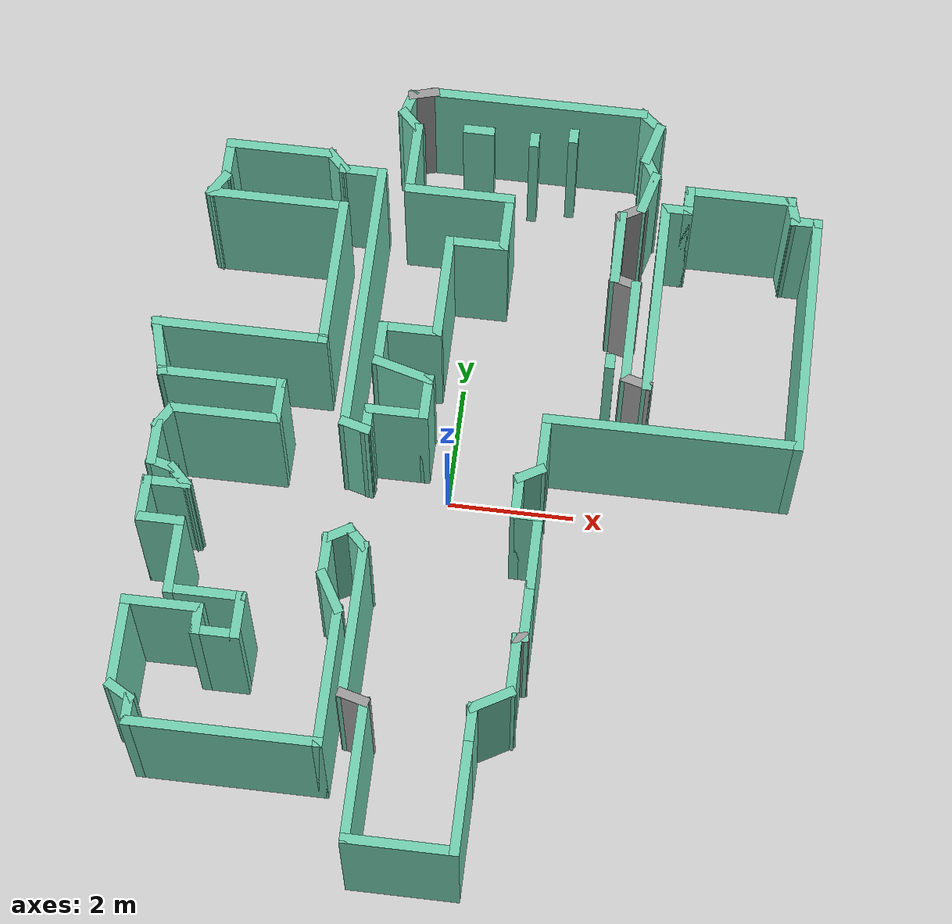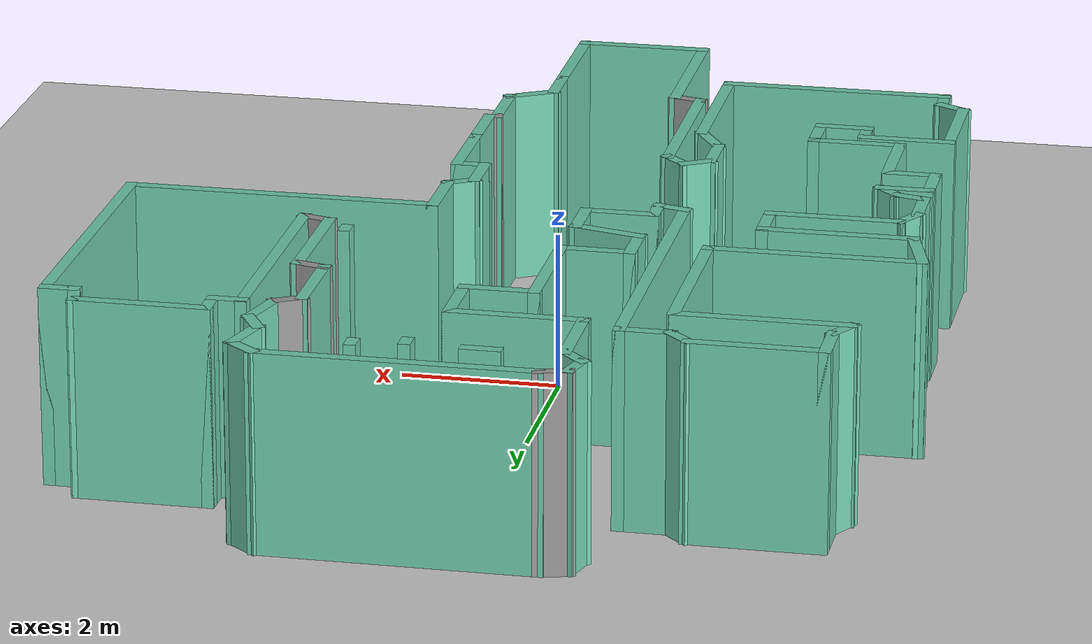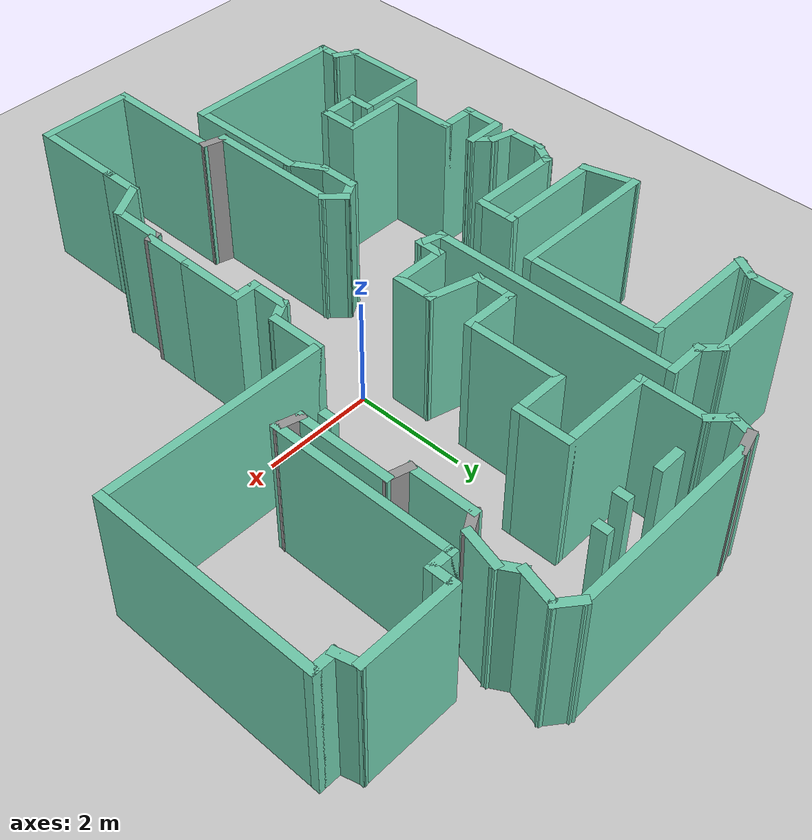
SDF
<sdf version="1.6">
 <world name="default">
  <model name="ground_plane">
   <static>1</static>
   <link name="link">
    <collision name="collision">
     <geometry><plane><normal>0 0 1</normal><size>100 100</size></plane></geometry>
     <surface>
      <contact><collide_bitmask>65535</collide_bitmask></contact>
      <friction><ode><mu>100</mu><mu2>50</mu2></ode></friction>
     </surface>
    </collision>
    <visual name="visual">
     <cast_shadows>0</cast_shadows>
     <geometry><plane><normal>0 0 1</normal><size>100 100</size></plane></geometry>
     <material>
      <script><uri>file://media/materials/scripts/gazebo.material</uri><name>Gazebo/Grey</name></script>
     </material>
    </visual>
   </link>
  </model>
  <model name="map_1">
   <pose>0.285268 -0.15484 0 0 -0 0</pose>
   <link name="Wall_1">
    <collision name="Wall_1_Collision">
     <geometry><box><size>3.5 0.15 2.5</size></box></geometry>
     <pose>0 0 1.25 0 -0 0</pose>
    </collision>
    <visual name="Wall_1_Visual">
     <pose>0 0 1.25 0 -0 0</pose>
     <geometry><box><size>3.5 0.15 2.5</size></box></geometry>
     <material>
      <script><uri>file://media/materials/scripts/gazebo.material</uri><name>Gazebo/Grey</name></script>
      <ambient>0.435294 0.796078 0.67451 1</ambient>
     </material>
     <meta><layer>0</layer></meta>
    </visual>
    <pose>0.433298 6.20572 0 0 -0 3.14159</pose>
   </link>
   <link name="Wall_10">
    <collision name="Wall_10_Collision">
     <geometry><box><size>1 0.15 2.5</size></box></geometry>
     <pose>0 0 1.25 0 -0 0</pose>
    </collision>
    <visual name="Wall_10_Visual">
     <pose>0 0 1.25 0 -0 0</pose>
     <geometry><box><size>1 0.15 2.5</size></box></geometry>
     <material>
      <script><uri>file://media/materials/scripts/gazebo.material</uri><name>Gazebo/Grey</name></script>
      <ambient>0.435294 0.796078 0.67451 1</ambient>
     </material>
     <meta><layer>0</layer></meta>
    </visual>
    <pose>-0.247875 3.57957 0 0 -0 3.14159</pose>
   </link>
   <link name="Wall_100">
    <collision name="Wall_100_Collision">
     <geometry><box><size>3.25 0.15 2.5</size></box></geometry>
     <pose>0 0 1.25 0 -0 0</pose>
    </collision>
    <visual name="Wall_100_Visual">
     <pose>0 0 1.25 0 -0 0</pose>
     <geometry><box><size>3.25 0.15 2.5</size></box></geometry>
     <material>
      <script><uri>file://media/materials/scripts/gazebo.material</uri><name>Gazebo/Grey</name></script>
      <ambient>0.435294 0.796078 0.67451 1</ambient>
     </material>
     <meta><layer>0</layer></meta>
    </visual>
    <pose>2.63867 3.00282 0 0 -0 -1.5708</pose>
   </link>
   <link name="Wall_101">
    <collision name="Wall_101_Collision">
     <geometry><box><size>0.5 0.15 2.5</size></box></geometry>
     <pose>0 0 1.25 0 -0 0</pose>
    </collision>
    <visual name="Wall_101_Visual">
     <pose>0 0 1.25 0 -0 0</pose>
     <geometry><box><size>0.5 0.15 2.5</size></box></geometry>
     <material>
      <script><uri>file://media/materials/scripts/gazebo.material</uri><name>Gazebo/Grey</name></script>
      <ambient>1 1 1 1</ambient>
     </material>
     <meta><layer>0</layer></meta>
    </visual>
    <pose>2.46963 1.49811 0 0 -0 2.87979</pose>
   </link>
   <link name="Wall_102">
    <collision name="Wall_102_Collision">
     <geometry><box><size>1.75 0.15 2.5</size></box></geometry>
     <pose>0 0 1.25 0 -0 0</pose>
    </collision>
    <visual name="Wall_102_Visual">
     <pose>0 0 1.25 0 -0 0</pose>
     <geometry><box><size>1.75 0.15 2.5</size></box></geometry>
     <material>
      <script><uri>file://media/materials/scripts/gazebo.material</uri><name>Gazebo/Grey</name></script>
      <ambient>0.435294 0.796078 0.67451 1</ambient>
     </material>
     <meta><layer>0</layer></meta>
    </visual>
    <pose>2.30059 2.3434 0 0 -0 1.5708</pose>
   </link>
   <link name="Wall_103">
    <collision name="Wall_103_Collision">
     <geometry><box><size>0.5 0.15 2.5</size></box></geometry>
     <pose>0 0 1.25 0 -0 0</pose>
    </collision>
    <visual name="Wall_103_Visual">
     <pose>0 0 1.25 0 -0 0</pose>
     <geometry><box><size>0.5 0.15 2.5</size></box></geometry>
     <material>
      <script><uri>file://media/materials/scripts/gazebo.material</uri><name>Gazebo/Grey</name></script>
      <ambient>1 1 1 1</ambient>
     </material>
     <meta><layer>0</layer></meta>
    </visual>
    <pose>2.13156 3.1887 0 0 -0 2.87979</pose>
   </link>
   <link name="Wall_104">
    <collision name="Wall_104_Collision">
     <geometry><box><size>1.25 0.15 2.5</size></box></geometry>
     <pose>0 0 1.25 0 -0 0</pose>
    </collision>
    <visual name="Wall_104_Visual">
     <pose>0 0 1.25 0 -0 0</pose>
     <geometry><box><size>1.25 0.15 2.5</size></box></geometry>
     <material>
      <script><uri>file://media/materials/scripts/gazebo.material</uri><name>Gazebo/Grey</name></script>
      <ambient>0.435294 0.796078 0.67451 1</ambient>
     </material>
     <meta><layer>0</layer></meta>
    </visual>
    <pose>1.96252 3.78399 0 0 -0 1.5708</pose>
   </link>
   <link name="Wall_105">
    <collision name="Wall_105_Collision">
     <geometry><box><size>0.5 0.15 2.5</size></box></geometry>
     <pose>0 0 1.25 0 -0 0</pose>
    </collision>
    <visual name="Wall_105_Visual">
     <pose>0 0 1.25 0 -0 0</pose>
     <geometry><box><size>0.5 0.15 2.5</size></box></geometry>
     <material>
      <script><uri>file://media/materials/scripts/gazebo.material</uri><name>Gazebo/Grey</name></script>
      <ambient>1 1 1 1</ambient>
     </material>
     <meta><layer>0</layer></meta>
    </visual>
    <pose>2.11407 4.42149 0 0 -0 0.523599</pose>
   </link>
   <link name="Wall_106">
    <collision name="Wall_106_Collision">
     <geometry><box><size>0.75 0.15 2.5</size></box></geometry>
     <pose>0 0 1.25 0 -0 0</pose>
    </collision>
    <visual name="Wall_106_Visual">
     <pose>0 0 1.25 0 -0 0</pose>
     <geometry><box><size>0.75 0.15 2.5</size></box></geometry>
     <material>
      <script><uri>file://media/materials/scripts/gazebo.material</uri><name>Gazebo/Grey</name></script>
      <ambient>0.435294 0.796078 0.67451 1</ambient>
     </material>
     <meta><layer>0</layer></meta>
    </visual>
    <pose>2.34327 4.79877 0 0 -0 1.309</pose>
   </link>
   <link name="Wall_107">
    <collision name="Wall_107_Collision">
     <geometry><box><size>0.5 0.15 2.5</size></box></geometry>
     <pose>0 0 1.25 0 -0 0</pose>
    </collision>
    <visual name="Wall_107_Visual">
     <pose>0 0 1.25 0 -0 0</pose>
     <geometry><box><size>0.5 0.15 2.5</size></box></geometry>
     <material>
      <script><uri>file://media/materials/scripts/gazebo.material</uri><name>Gazebo/Grey</name></script>
      <ambient>0.435294 0.796078 0.67451 1</ambient>
     </material>
     <meta><layer>0</layer></meta>
    </visual>
    <pose>2.33342 5.2401 0 0 -0 2.0944</pose>
   </link>
   <link name="Wall_108">
    <collision name="Wall_108_Collision">
     <geometry><box><size>0.75 0.15 2.5</size></box></geometry>
     <pose>0 0 1.25 0 -0 0</pose>
    </collision>
    <visual name="Wall_108_Visual">
     <pose>0 0 1.25 0 -0 0</pose>
     <geometry><box><size>0.75 0.15 2.5</size></box></geometry>
     <material>
      <script><uri>file://media/materials/scripts/gazebo.material</uri><name>Gazebo/Grey</name></script>
      <ambient>0.435294 0.796078 0.67451 1</ambient>
     </material>
     <meta><layer>0</layer></meta>
    </visual>
    <pose>2.32356 5.68143 0 0 -0 1.309</pose>
   </link>
   <link name="Wall_109">
    <collision name="Wall_109_Collision">
     <geometry><box><size>0.525223 0.15 2.5</size></box></geometry>
     <pose>0 0 1.25 0 -0 0</pose>
    </collision>
    <visual name="Wall_109_Visual">
     <pose>0 0 1.25 0 -0 0</pose>
     <geometry><box><size>0.525223 0.15 2.5</size></box></geometry>
     <material>
      <script><uri>file://media/materials/scripts/gazebo.material</uri><name>Gazebo/Grey</name></script>
      <ambient>0.435294 0.796078 0.67451 1</ambient>
     </material>
     <meta><layer>0</layer></meta>
    </visual>
    <pose>2.25475 6.08846 0 0 -0 2.46648</pose>
   </link>
   <link name="Wall_11">
    <collision name="Wall_11_Collision">
     <geometry><box><size>1.75 0.15 2.5</size></box></geometry>
     <pose>0 0 1.25 0 -0 0</pose>
    </collision>
    <visual name="Wall_11_Visual">
     <pose>0 0 1.25 0 -0 0</pose>
     <geometry><box><size>1.75 0.15 2.5</size></box></geometry>
     <material>
      <script><uri>file://media/materials/scripts/gazebo.material</uri><name>Gazebo/Grey</name></script>
      <ambient>0.435294 0.796078 0.67451 1</ambient>
     </material>
     <meta><layer>0</layer></meta>
    </visual>
    <pose>-0.672875 2.77957 0 0 -0 -1.5708</pose>
   </link>
   <link name="Wall_111">
    <collision name="Wall_111_Collision">
     <geometry><box><size>0.5 0.15 2.5</size></box></geometry>
     <pose>0 0 1.25 0 -0 0</pose>
    </collision>
    <visual name="Wall_111_Visual">
     <pose>0 0 1.25 0 -0 0</pose>
     <geometry><box><size>0.5 0.15 2.5</size></box></geometry>
     <material>
      <script><uri>file://media/materials/scripts/gazebo.material</uri><name>Gazebo/Grey</name></script>
      <ambient>0.435294 0.796078 0.67451 1</ambient>
     </material>
     <meta><layer>0</layer></meta>
    </visual>
    <pose>-0.451736 5.60255 0 0 -0 0</pose>
   </link>
   <link name="Wall_113">
    <collision name="Wall_113_Collision">
     <geometry><box><size>0.25 0.15 2.5</size></box></geometry>
     <pose>0 0 1.25 0 -0 0</pose>
    </collision>
    <visual name="Wall_113_Visual">
     <pose>0 0 1.25 0 -0 0</pose>
     <geometry><box><size>0.25 0.15 2.5</size></box></geometry>
     <material>
      <script><uri>file://media/materials/scripts/gazebo.material</uri><name>Gazebo/Grey</name></script>
      <ambient>0.435294 0.796078 0.67451 1</ambient>
     </material>
     <meta><layer>0</layer></meta>
    </visual>
    <pose>0.443922 5.53019 0 0 -0 1.5708</pose>
   </link>
   <link name="Wall_115">
    <collision name="Wall_115_Collision">
     <geometry><box><size>0.25 0.15 2.5</size></box></geometry>
     <pose>0 0 1.25 0 -0 0</pose>
    </collision>
    <visual name="Wall_115_Visual">
     <pose>0 0 1.25 0 -0 0</pose>
     <geometry><box><size>0.25 0.15 2.5</size></box></geometry>
     <material>
      <script><uri>file://media/materials/scripts/gazebo.material</uri><name>Gazebo/Grey</name></script>
      <ambient>0.435294 0.796078 0.67451 1</ambient>
     </material>
     <meta><layer>0</layer></meta>
    </visual>
    <pose>1.05573 5.67491 0 0 -0 -1.5708</pose>
   </link>
   <link name="Wall_117">
    <collision name="Wall_117_Collision">
     <geometry><box><size>0.25 0.15 2.5</size></box></geometry>
     <pose>0 0 1.25 0 -0 0</pose>
    </collision>
    <visual name="Wall_117_Visual">
     <pose>0 0 1.25 0 -0 0</pose>
     <geometry><box><size>0.25 0.15 2.5</size></box></geometry>
     <material>
      <script><uri>file://media/materials/scripts/gazebo.material</uri><name>Gazebo/Grey</name></script>
      <ambient>0.435294 0.796078 0.67451 1</ambient>
     </material>
     <meta><layer>0</layer></meta>
    </visual>
    <pose>2.03461 1.79818 0 0 -0 1.5708</pose>
   </link>
   <link name="Wall_12">
    <collision name="Wall_12_Collision">
     <geometry><box><size>1 0.15 2.5</size></box></geometry>
     <pose>0 0 1.25 0 -0 0</pose>
    </collision>
    <visual name="Wall_12_Visual">
     <pose>0 0 1.25 0 -0 0</pose>
     <geometry><box><size>1 0.15 2.5</size></box></geometry>
     <material>
      <script><uri>file://media/materials/scripts/gazebo.material</uri><name>Gazebo/Grey</name></script>
      <ambient>0.435294 0.796078 0.67451 1</ambient>
     </material>
     <meta><layer>0</layer></meta>
    </visual>
    <pose>-1.09787 1.97957 0 0 -0 3.14159</pose>
   </link>
   <link name="Wall_13">
    <collision name="Wall_13_Collision">
     <geometry><box><size>0.75 0.15 2.5</size></box></geometry>
     <pose>0 0 1.25 0 -0 0</pose>
    </collision>
    <visual name="Wall_13_Visual">
     <pose>0 0 1.25 0 -0 0</pose>
     <geometry><box><size>0.75 0.15 2.5</size></box></geometry>
     <material>
      <script><uri>file://media/materials/scripts/gazebo.material</uri><name>Gazebo/Grey</name></script>
      <ambient>0.435294 0.796078 0.67451 1</ambient>
     </material>
     <meta><layer>0</layer></meta>
    </visual>
    <pose>-1.52287 1.67957 0 0 -0 -1.5708</pose>
   </link>
   <link name="Wall_14">
    <collision name="Wall_14_Collision">
     <geometry><box><size>1 0.15 2.5</size></box></geometry>
     <pose>0 0 1.25 0 -0 0</pose>
    </collision>
    <visual name="Wall_14_Visual">
     <pose>0 0 1.25 0 -0 0</pose>
     <geometry><box><size>1 0.15 2.5</size></box></geometry>
     <material>
      <script><uri>file://media/materials/scripts/gazebo.material</uri><name>Gazebo/Grey</name></script>
      <ambient>0.435294 0.796078 0.67451 1</ambient>
     </material>
     <meta><layer>0</layer></meta>
    </visual>
    <pose>-1.11236 1.26957 0 0 -0 -0.261799</pose>
   </link>
   <link name="Wall_15">
    <collision name="Wall_15_Collision">
     <geometry><box><size>0.75 0.15 2.5</size></box></geometry>
     <pose>0 0 1.25 0 -0 0</pose>
    </collision>
    <visual name="Wall_15_Visual">
     <pose>0 0 1.25 0 -0 0</pose>
     <geometry><box><size>0.75 0.15 2.5</size></box></geometry>
     <material>
      <script><uri>file://media/materials/scripts/gazebo.material</uri><name>Gazebo/Grey</name></script>
      <ambient>0.435294 0.796078 0.67451 1</ambient>
     </material>
     <meta><layer>0</layer></meta>
    </visual>
    <pose>-0.701838 0.859574 0 0 -0 -1.5708</pose>
   </link>
   <link name="Wall_16">
    <collision name="Wall_16_Collision">
     <geometry><box><size>1 0.15 2.5</size></box></geometry>
     <pose>0 0 1.25 0 -0 0</pose>
    </collision>
    <visual name="Wall_16_Visual">
     <pose>0 0 1.25 0 -0 0</pose>
     <geometry><box><size>1 0.15 2.5</size></box></geometry>
     <material>
      <script><uri>file://media/materials/scripts/gazebo.material</uri><name>Gazebo/Grey</name></script>
      <ambient>0.435294 0.796078 0.67451 1</ambient>
     </material>
     <meta><layer>0</layer></meta>
    </visual>
    <pose>-1.12684 0.559574 0 0 -0 3.14159</pose>
   </link>
   <link name="Wall_2">
    <collision name="Wall_2_Collision">
     <geometry><box><size>0.5 0.15 2.5</size></box></geometry>
     <pose>0 0 1.25 0 -0 0</pose>
    </collision>
    <visual name="Wall_2_Visual">
     <pose>0 0 1.25 0 -0 0</pose>
     <geometry><box><size>0.5 0.15 2.5</size></box></geometry>
     <material>
      <script><uri>file://media/materials/scripts/gazebo.material</uri><name>Gazebo/Grey</name></script>
      <ambient>1 1 1 1</ambient>
     </material>
     <meta><layer>0</layer></meta>
    </visual>
    <pose>-1.41074 6.16043 0 0 -0 -2.87979</pose>
   </link>
   <link name="Wall_24">
    <collision name="Wall_24_Collision">
     <geometry><box><size>0.5 0.15 2.5</size></box></geometry>
     <pose>0 0 1.25 0 -0 0</pose>
    </collision>
    <visual name="Wall_24_Visual">
     <pose>0 0 1.25 0 -0 0</pose>
     <geometry><box><size>0.5 0.15 2.5</size></box></geometry>
     <material>
      <script><uri>file://media/materials/scripts/gazebo.material</uri><name>Gazebo/Grey</name></script>
      <ambient>0.435294 0.796078 0.67451 1</ambient>
     </material>
     <meta><layer>0</layer></meta>
    </visual>
    <pose>-1.55184 0.384574 0 0 -0 -1.5708</pose>
   </link>
   <link name="Wall_25">
    <collision name="Wall_25_Collision">
     <geometry><box><size>0.5 0.15 2.5</size></box></geometry>
     <pose>0 0 1.25 0 -0 0</pose>
    </collision>
    <visual name="Wall_25_Visual">
     <pose>0 0 1.25 0 -0 0</pose>
     <geometry><box><size>0.5 0.15 2.5</size></box></geometry>
     <material>
      <script><uri>file://media/materials/scripts/gazebo.material</uri><name>Gazebo/Grey</name></script>
      <ambient>0.435294 0.796078 0.67451 1</ambient>
     </material>
     <meta><layer>0</layer></meta>
    </visual>
    <pose>-1.72087 0.254867 0 0 -0 2.87979</pose>
   </link>
   <link name="Wall_28">
    <collision name="Wall_28_Collision">
     <geometry><box><size>4.5 0.15 2.5</size></box></geometry>
     <pose>0 0 1.25 0 -0 0</pose>
    </collision>
    <visual name="Wall_28_Visual">
     <pose>0 0 1.25 0 -0 0</pose>
     <geometry><box><size>4.5 0.15 2.5</size></box></geometry>
     <material>
      <script><uri>file://media/materials/scripts/gazebo.material</uri><name>Gazebo/Grey</name></script>
      <ambient>0.435294 0.796078 0.67451 1</ambient>
     </material>
     <meta><layer>0</layer></meta>
    </visual>
    <pose>-1.88991 2.47516 0 0 -0 1.5708</pose>
   </link>
   <link name="Wall_29">
    <collision name="Wall_29_Collision">
     <geometry><box><size>0.75 0.15 2.5</size></box></geometry>
     <pose>0 0 1.25 0 -0 0</pose>
    </collision>
    <visual name="Wall_29_Visual">
     <pose>0 0 1.25 0 -0 0</pose>
     <geometry><box><size>0.75 0.15 2.5</size></box></geometry>
     <material>
      <script><uri>file://media/materials/scripts/gazebo.material</uri><name>Gazebo/Grey</name></script>
      <ambient>0.435294 0.796078 0.67451 1</ambient>
     </material>
     <meta><layer>0</layer></meta>
    </visual>
    <pose>-2.18991 4.65016 0 0 -0 3.14159</pose>
   </link>
   <link name="Wall_3">
    <collision name="Wall_3_Collision">
     <geometry><box><size>0.5 0.15 2.5</size></box></geometry>
     <pose>0 0 1.25 0 -0 0</pose>
    </collision>
    <visual name="Wall_3_Visual">
     <pose>0 0 1.25 0 -0 0</pose>
     <geometry><box><size>0.5 0.15 2.5</size></box></geometry>
     <material>
      <script><uri>file://media/materials/scripts/gazebo.material</uri><name>Gazebo/Grey</name></script>
      <ambient>0.435294 0.796078 0.67451 1</ambient>
     </material>
     <meta><layer>0</layer></meta>
    </visual>
    <pose>-1.62507 5.94609 0 0 -0 -1.8326</pose>
   </link>
   <link name="Wall_30">
    <collision name="Wall_30_Collision">
     <geometry><box><size>0.5 0.15 2.5</size></box></geometry>
     <pose>0 0 1.25 0 -0 0</pose>
    </collision>
    <visual name="Wall_30_Visual">
     <pose>0 0 1.25 0 -0 0</pose>
     <geometry><box><size>0.5 0.15 2.5</size></box></geometry>
     <material>
      <script><uri>file://media/materials/scripts/gazebo.material</uri><name>Gazebo/Grey</name></script>
      <ambient>0.435294 0.796078 0.67451 1</ambient>
     </material>
     <meta><layer>0</layer></meta>
    </visual>
    <pose>-2.61366 4.7739 0 0 -0 2.35619</pose>
   </link>
   <link name="Wall_31">
    <collision name="Wall_31_Collision">
     <geometry><box><size>1.75 0.15 2.5</size></box></geometry>
     <pose>0 0 1.25 0 -0 0</pose>
    </collision>
    <visual name="Wall_31_Visual">
     <pose>0 0 1.25 0 -0 0</pose>
     <geometry><box><size>1.75 0.15 2.5</size></box></geometry>
     <material>
      <script><uri>file://media/materials/scripts/gazebo.material</uri><name>Gazebo/Grey</name></script>
      <ambient>0.435294 0.796078 0.67451 1</ambient>
     </material>
     <meta><layer>0</layer></meta>
    </visual>
    <pose>-3.5374 4.89765 0 0 -0 3.14159</pose>
   </link>
   <link name="Wall_32">
    <collision name="Wall_32_Collision">
     <geometry><box><size>0.75 0.15 2.5</size></box></geometry>
     <pose>0 0 1.25 0 -0 0</pose>
    </collision>
    <visual name="Wall_32_Visual">
     <pose>0 0 1.25 0 -0 0</pose>
     <geometry><box><size>0.75 0.15 2.5</size></box></geometry>
     <material>
      <script><uri>file://media/materials/scripts/gazebo.material</uri><name>Gazebo/Grey</name></script>
      <ambient>0.435294 0.796078 0.67451 1</ambient>
     </material>
     <meta><layer>0</layer></meta>
    </visual>
    <pose>-4.3374 4.59765 0 0 -0 -1.5708</pose>
   </link>
   <link name="Wall_33">
    <collision name="Wall_33_Collision">
     <geometry><box><size>0.5 0.15 2.5</size></box></geometry>
     <pose>0 0 1.25 0 -0 0</pose>
    </collision>
    <visual name="Wall_33_Visual">
     <pose>0 0 1.25 0 -0 0</pose>
     <geometry><box><size>0.5 0.15 2.5</size></box></geometry>
     <material>
      <script><uri>file://media/materials/scripts/gazebo.material</uri><name>Gazebo/Grey</name></script>
      <ambient>0.435294 0.796078 0.67451 1</ambient>
     </material>
     <meta><layer>0</layer></meta>
    </visual>
    <pose>-4.4249 4.14609 0 0 -0 -2.0944</pose>
   </link>
   <link name="Wall_37">
    <collision name="Wall_37_Collision">
     <geometry><box><size>2.25 0.15 2.5</size></box></geometry>
     <pose>0 0 1.25 0 -0 0</pose>
    </collision>
    <visual name="Wall_37_Visual">
     <pose>0 0 1.25 0 -0 0</pose>
     <geometry><box><size>2.25 0.15 2.5</size></box></geometry>
     <material>
      <script><uri>file://media/materials/scripts/gazebo.material</uri><name>Gazebo/Grey</name></script>
      <ambient>0.435294 0.796078 0.67451 1</ambient>
     </material>
     <meta><layer>0</layer></meta>
    </visual>
    <pose>-3.4624 3.99454 0 0 -0 0</pose>
   </link>
   <link name="Wall_38">
    <collision name="Wall_38_Collision">
     <geometry><box><size>2.5 0.15 2.5</size></box></geometry>
     <pose>0 0 1.25 0 -0 0</pose>
    </collision>
    <visual name="Wall_38_Visual">
     <pose>0 0 1.25 0 -0 0</pose>
     <geometry><box><size>2.5 0.15 2.5</size></box></geometry>
     <material>
      <script><uri>file://media/materials/scripts/gazebo.material</uri><name>Gazebo/Grey</name></script>
      <ambient>0.435294 0.796078 0.67451 1</ambient>
     </material>
     <meta><layer>0</layer></meta>
    </visual>
    <pose>-2.4124 2.81954 0 0 -0 -1.5708</pose>
   </link>
   <link name="Wall_39">
    <collision name="Wall_39_Collision">
     <geometry><box><size>2.75 0.15 2.5</size></box></geometry>
     <pose>0 0 1.25 0 -0 0</pose>
    </collision>
    <visual name="Wall_39_Visual">
     <pose>0 0 1.25 0 -0 0</pose>
     <geometry><box><size>2.75 0.15 2.5</size></box></geometry>
     <material>
      <script><uri>file://media/materials/scripts/gazebo.material</uri><name>Gazebo/Grey</name></script>
      <ambient>0.435294 0.796078 0.67451 1</ambient>
     </material>
     <meta><layer>0</layer></meta>
    </visual>
    <pose>-3.7124 1.64454 0 0 -0 3.14159</pose>
   </link>
   <link name="Wall_4">
    <collision name="Wall_4_Collision">
     <geometry><box><size>0.5 0.15 2.5</size></box></geometry>
     <pose>0 0 1.25 0 -0 0</pose>
    </collision>
    <visual name="Wall_4_Visual">
     <pose>0 0 1.25 0 -0 0</pose>
     <geometry><box><size>0.5 0.15 2.5</size></box></geometry>
     <material>
      <script><uri>file://media/materials/scripts/gazebo.material</uri><name>Gazebo/Grey</name></script>
      <ambient>0.435294 0.796078 0.67451 1</ambient>
     </material>
     <meta><layer>0</layer></meta>
    </visual>
    <pose>-1.54662 5.65331 0 0 -0 -0.785398</pose>
   </link>
   <link name="Wall_40">
    <collision name="Wall_40_Collision">
     <geometry><box><size>1 0.15 2.5</size></box></geometry>
     <pose>0 0 1.25 0 -0 0</pose>
    </collision>
    <visual name="Wall_40_Visual">
     <pose>0 0 1.25 0 -0 0</pose>
     <geometry><box><size>1 0.15 2.5</size></box></geometry>
     <material>
      <script><uri>file://media/materials/scripts/gazebo.material</uri><name>Gazebo/Grey</name></script>
      <ambient>0.435294 0.796078 0.67451 1</ambient>
     </material>
     <meta><layer>0</layer></meta>
    </visual>
    <pose>-4.9024 1.23402 0 0 -0 -1.309</pose>
   </link>
   <link name="Wall_41">
    <collision name="Wall_41_Collision">
     <geometry><box><size>2 0.15 2.5</size></box></geometry>
     <pose>0 0 1.25 0 -0 0</pose>
    </collision>
    <visual name="Wall_41_Visual">
     <pose>0 0 1.25 0 -0 0</pose>
     <geometry><box><size>2 0.15 2.5</size></box></geometry>
     <material>
      <script><uri>file://media/materials/scripts/gazebo.material</uri><name>Gazebo/Grey</name></script>
      <ambient>0.435294 0.796078 0.67451 1</ambient>
     </material>
     <meta><layer>0</layer></meta>
    </visual>
    <pose>-3.8674 0.823502 0 0 -0 0</pose>
   </link>
   <link name="Wall_42">
    <collision name="Wall_42_Collision">
     <geometry><box><size>0.75 0.15 2.5</size></box></geometry>
     <pose>0 0 1.25 0 -0 0</pose>
    </collision>
    <visual name="Wall_42_Visual">
     <pose>0 0 1.25 0 -0 0</pose>
     <geometry><box><size>0.75 0.15 2.5</size></box></geometry>
     <material>
      <script><uri>file://media/materials/scripts/gazebo.material</uri><name>Gazebo/Grey</name></script>
      <ambient>0.435294 0.796078 0.67451 1</ambient>
     </material>
     <meta><layer>0</layer></meta>
    </visual>
    <pose>-2.9424 0.523502 0 0 -0 -1.5708</pose>
   </link>
   <link name="Wall_43">
    <collision name="Wall_43_Collision">
     <geometry><box><size>1.75 0.15 2.5</size></box></geometry>
     <pose>0 0 1.25 0 -0 0</pose>
    </collision>
    <visual name="Wall_43_Visual">
     <pose>0 0 1.25 0 -0 0</pose>
     <geometry><box><size>1.75 0.15 2.5</size></box></geometry>
     <material>
      <script><uri>file://media/materials/scripts/gazebo.material</uri><name>Gazebo/Grey</name></script>
      <ambient>0.435294 0.796078 0.67451 1</ambient>
     </material>
     <meta><layer>0</layer></meta>
    </visual>
    <pose>-3.7424 0.223502 0 0 -0 3.14159</pose>
   </link>
   <link name="Wall_44">
    <collision name="Wall_44_Collision">
     <geometry><box><size>0.5 0.15 2.5</size></box></geometry>
     <pose>0 0 1.25 0 -0 0</pose>
    </collision>
    <visual name="Wall_44_Visual">
     <pose>0 0 1.25 0 -0 0</pose>
     <geometry><box><size>0.5 0.15 2.5</size></box></geometry>
     <material>
      <script><uri>file://media/materials/scripts/gazebo.material</uri><name>Gazebo/Grey</name></script>
      <ambient>0.435294 0.796078 0.67451 1</ambient>
     </material>
     <meta><layer>0</layer></meta>
    </visual>
    <pose>-4.6299 0.071948 0 0 -0 -2.0944</pose>
   </link>
   <link name="Wall_47">
    <collision name="Wall_47_Collision">
     <geometry><box><size>0.75 0.15 2.5</size></box></geometry>
     <pose>0 0 1.25 0 -0 0</pose>
    </collision>
    <visual name="Wall_47_Visual">
     <pose>0 0 1.25 0 -0 0</pose>
     <geometry><box><size>0.75 0.15 2.5</size></box></geometry>
     <material>
      <script><uri>file://media/materials/scripts/gazebo.material</uri><name>Gazebo/Grey</name></script>
      <ambient>0.435294 0.796078 0.67451 1</ambient>
     </material>
     <meta><layer>0</layer></meta>
    </visual>
    <pose>-4.7174 -0.379607 0 0 -0 -1.5708</pose>
   </link>
   <link name="Wall_48">
    <collision name="Wall_48_Collision">
     <geometry><box><size>0.5 0.15 2.5</size></box></geometry>
     <pose>0 0 1.25 0 -0 0</pose>
    </collision>
    <visual name="Wall_48_Visual">
     <pose>0 0 1.25 0 -0 0</pose>
     <geometry><box><size>0.5 0.15 2.5</size></box></geometry>
     <material>
      <script><uri>file://media/materials/scripts/gazebo.material</uri><name>Gazebo/Grey</name></script>
      <ambient>0.435294 0.796078 0.67451 1</ambient>
     </material>
     <meta><layer>0</layer></meta>
    </visual>
    <pose>-4.54837 -0.7249 0 0 -0 -0.261799</pose>
   </link>
   <link name="Wall_49">
    <collision name="Wall_49_Collision">
     <geometry><box><size>0.5 0.15 2.5</size></box></geometry>
     <pose>0 0 1.25 0 -0 0</pose>
    </collision>
    <visual name="Wall_49_Visual">
     <pose>0 0 1.25 0 -0 0</pose>
     <geometry><box><size>0.5 0.15 2.5</size></box></geometry>
     <material>
      <script><uri>file://media/materials/scripts/gazebo.material</uri><name>Gazebo/Grey</name></script>
      <ambient>0.435294 0.796078 0.67451 1</ambient>
     </material>
     <meta><layer>0</layer></meta>
    </visual>
    <pose>-4.25558 -0.893937 0 0 -0 -0.785398</pose>
   </link>
   <link name="Wall_50">
    <collision name="Wall_50_Collision">
     <geometry><box><size>0.75 0.15 2.5</size></box></geometry>
     <pose>0 0 1.25 0 -0 0</pose>
    </collision>
    <visual name="Wall_50_Visual">
     <pose>0 0 1.25 0 -0 0</pose>
     <geometry><box><size>0.75 0.15 2.5</size></box></geometry>
     <material>
      <script><uri>file://media/materials/scripts/gazebo.material</uri><name>Gazebo/Grey</name></script>
      <ambient>0.435294 0.796078 0.67451 1</ambient>
     </material>
     <meta><layer>0</layer></meta>
    </visual>
    <pose>-4.43184 -1.01768 0 0 -0 3.14159</pose>
   </link>
   <link name="Wall_51">
    <collision name="Wall_51_Collision">
     <geometry><box><size>0.75 0.15 2.5</size></box></geometry>
     <pose>0 0 1.25 0 -0 0</pose>
    </collision>
    <visual name="Wall_51_Visual">
     <pose>0 0 1.25 0 -0 0</pose>
     <geometry><box><size>0.75 0.15 2.5</size></box></geometry>
     <material>
      <script><uri>file://media/materials/scripts/gazebo.material</uri><name>Gazebo/Grey</name></script>
      <ambient>0.435294 0.796078 0.67451 1</ambient>
     </material>
     <meta><layer>0</layer></meta>
    </visual>
    <pose>-4.73184 -1.31768 0 0 -0 -1.5708</pose>
   </link>
   <link name="Wall_52">
    <collision name="Wall_52_Collision">
     <geometry><box><size>0.75 0.15 2.5</size></box></geometry>
     <pose>0 0 1.25 0 -0 0</pose>
    </collision>
    <visual name="Wall_52_Visual">
     <pose>0 0 1.25 0 -0 0</pose>
     <geometry><box><size>0.75 0.15 2.5</size></box></geometry>
     <material>
      <script><uri>file://media/materials/scripts/gazebo.material</uri><name>Gazebo/Grey</name></script>
      <ambient>0.435294 0.796078 0.67451 1</ambient>
     </material>
     <meta><layer>0</layer></meta>
    </visual>
    <pose>-4.43184 -1.61768 0 0 -0 0</pose>
   </link>
   <link name="Wall_53">
    <collision name="Wall_53_Collision">
     <geometry><box><size>1.25 0.15 2.5</size></box></geometry>
     <pose>0 0 1.25 0 -0 0</pose>
    </collision>
    <visual name="Wall_53_Visual">
     <pose>0 0 1.25 0 -0 0</pose>
     <geometry><box><size>1.25 0.15 2.5</size></box></geometry>
     <material>
      <script><uri>file://media/materials/scripts/gazebo.material</uri><name>Gazebo/Grey</name></script>
      <ambient>0.435294 0.796078 0.67451 1</ambient>
     </material>
     <meta><layer>0</layer></meta>
    </visual>
    <pose>-4.13184 -2.16768 0 0 -0 -1.5708</pose>
   </link>
   <link name="Wall_54">
    <collision name="Wall_54_Collision">
     <geometry><box><size>1.25 0.15 2.5</size></box></geometry>
     <pose>0 0 1.25 0 -0 0</pose>
    </collision>
    <visual name="Wall_54_Visual">
     <pose>0 0 1.25 0 -0 0</pose>
     <geometry><box><size>1.25 0.15 2.5</size></box></geometry>
     <material>
      <script><uri>file://media/materials/scripts/gazebo.material</uri><name>Gazebo/Grey</name></script>
      <ambient>0.435294 0.796078 0.67451 1</ambient>
     </material>
     <meta><layer>0</layer></meta>
    </visual>
    <pose>-3.58184 -2.71768 0 0 -0 0</pose>
   </link>
   <link name="Wall_56">
    <collision name="Wall_56_Collision">
     <geometry><box><size>0.75 0.15 2.5</size></box></geometry>
     <pose>0 0 1.25 0 -0 0</pose>
    </collision>
    <visual name="Wall_56_Visual">
     <pose>0 0 1.25 0 -0 0</pose>
     <geometry><box><size>0.75 0.15 2.5</size></box></geometry>
     <material>
      <script><uri>file://media/materials/scripts/gazebo.material</uri><name>Gazebo/Grey</name></script>
      <ambient>0.435294 0.796078 0.67451 1</ambient>
     </material>
     <meta><layer>0</layer></meta>
    </visual>
    <pose>-3.03184 -3.01768 0 0 -0 -1.5708</pose>
   </link>
   <link name="Wall_59">
    <collision name="Wall_59_Collision">
     <geometry><box><size>0.75 0.15 2.5</size></box></geometry>
     <pose>0 0 1.25 0 -0 0</pose>
    </collision>
    <visual name="Wall_59_Visual">
     <pose>0 0 1.25 0 -0 0</pose>
     <geometry><box><size>0.75 0.15 2.5</size></box></geometry>
     <material>
      <script><uri>file://media/materials/scripts/gazebo.material</uri><name>Gazebo/Grey</name></script>
      <ambient>0.435294 0.796078 0.67451 1</ambient>
     </material>
     <meta><layer>0</layer></meta>
    </visual>
    <pose>-3.33184 -3.31768 0 0 -0 3.14159</pose>
   </link>
   <link name="Wall_60">
    <collision name="Wall_60_Collision">
     <geometry><box><size>0.5 0.15 2.5</size></box></geometry>
     <pose>0 0 1.25 0 -0 0</pose>
    </collision>
    <visual name="Wall_60_Visual">
     <pose>0 0 1.25 0 -0 0</pose>
     <geometry><box><size>0.5 0.15 2.5</size></box></geometry>
     <material>
      <script><uri>file://media/materials/scripts/gazebo.material</uri><name>Gazebo/Grey</name></script>
      <ambient>0.435294 0.796078 0.67451 1</ambient>
     </material>
     <meta><layer>0</layer></meta>
    </visual>
    <pose>-3.63184 -3.14268 0 0 -0 1.5708</pose>
   </link>
   <link name="Wall_61">
    <collision name="Wall_61_Collision">
     <geometry><box><size>1.25 0.15 2.5</size></box></geometry>
     <pose>0 0 1.25 0 -0 0</pose>
    </collision>
    <visual name="Wall_61_Visual">
     <pose>0 0 1.25 0 -0 0</pose>
     <geometry><box><size>1.25 0.15 2.5</size></box></geometry>
     <material>
      <script><uri>file://media/materials/scripts/gazebo.material</uri><name>Gazebo/Grey</name></script>
      <ambient>0.435294 0.796078 0.67451 1</ambient>
     </material>
     <meta><layer>0</layer></meta>
    </visual>
    <pose>-4.18184 -2.96768 0 0 -0 3.14159</pose>
   </link>
   <link name="Wall_62">
    <collision name="Wall_62_Collision">
     <geometry><box><size>1.5 0.15 2.5</size></box></geometry>
     <pose>0 0 1.25 0 -0 0</pose>
    </collision>
    <visual name="Wall_62_Visual">
     <pose>0 0 1.25 0 -0 0</pose>
     <geometry><box><size>1.5 0.15 2.5</size></box></geometry>
     <material>
      <script><uri>file://media/materials/scripts/gazebo.material</uri><name>Gazebo/Grey</name></script>
      <ambient>0.435294 0.796078 0.67451 1</ambient>
     </material>
     <meta><layer>0</layer></meta>
    </visual>
    <pose>-4.73184 -3.64268 0 0 -0 -1.5708</pose>
   </link>
   <link name="Wall_63">
    <collision name="Wall_63_Collision">
     <geometry><box><size>0.5 0.15 2.5</size></box></geometry>
     <pose>0 0 1.25 0 -0 0</pose>
    </collision>
    <visual name="Wall_63_Visual">
     <pose>0 0 1.25 0 -0 0</pose>
     <geometry><box><size>0.5 0.15 2.5</size></box></geometry>
     <material>
      <script><uri>file://media/materials/scripts/gazebo.material</uri><name>Gazebo/Grey</name></script>
      <ambient>0.435294 0.796078 0.67451 1</ambient>
     </material>
     <meta><layer>0</layer></meta>
    </visual>
    <pose>-4.58029 -4.40518 0 0 -0 -0.523599</pose>
   </link>
   <link name="Wall_64">
    <collision name="Wall_64_Collision">
     <geometry><box><size>0.5 0.15 2.5</size></box></geometry>
     <pose>0 0 1.25 0 -0 0</pose>
    </collision>
    <visual name="Wall_64_Visual">
     <pose>0 0 1.25 0 -0 0</pose>
     <geometry><box><size>0.5 0.15 2.5</size></box></geometry>
     <material>
      <script><uri>file://media/materials/scripts/gazebo.material</uri><name>Gazebo/Grey</name></script>
      <ambient>0.435294 0.796078 0.67451 1</ambient>
     </material>
     <meta><layer>0</layer></meta>
    </visual>
    <pose>-4.42873 -4.66768 0 0 -0 -1.5708</pose>
   </link>
   <link name="Wall_65">
    <collision name="Wall_65_Collision">
     <geometry><box><size>3 0.15 2.5</size></box></geometry>
     <pose>0 0 1.25 0 -0 0</pose>
    </collision>
    <visual name="Wall_65_Visual">
     <pose>0 0 1.25 0 -0 0</pose>
     <geometry><box><size>3 0.15 2.5</size></box></geometry>
     <material>
      <script><uri>file://media/materials/scripts/gazebo.material</uri><name>Gazebo/Grey</name></script>
      <ambient>0.435294 0.796078 0.67451 1</ambient>
     </material>
     <meta><layer>0</layer></meta>
    </visual>
    <pose>-3.00373 -4.84268 0 0 -0 0</pose>
   </link>
   <link name="Wall_66">
    <collision name="Wall_66_Collision">
     <geometry><box><size>2.25 0.15 2.5</size></box></geometry>
     <pose>0 0 1.25 0 -0 0</pose>
    </collision>
    <visual name="Wall_66_Visual">
     <pose>0 0 1.25 0 -0 0</pose>
     <geometry><box><size>2.25 0.15 2.5</size></box></geometry>
     <material>
      <script><uri>file://media/materials/scripts/gazebo.material</uri><name>Gazebo/Grey</name></script>
      <ambient>0.435294 0.796078 0.67451 1</ambient>
     </material>
     <meta><layer>0</layer></meta>
    </visual>
    <pose>-1.57873 -3.79268 0 0 -0 1.5708</pose>
   </link>
   <link name="Wall_67">
    <collision name="Wall_67_Collision">
     <geometry><box><size>0.75 0.15 2.5</size></box></geometry>
     <pose>0 0 1.25 0 -0 0</pose>
    </collision>
    <visual name="Wall_67_Visual">
     <pose>0 0 1.25 0 -0 0</pose>
     <geometry><box><size>0.75 0.15 2.5</size></box></geometry>
     <material>
      <script><uri>file://media/materials/scripts/gazebo.material</uri><name>Gazebo/Grey</name></script>
      <ambient>0.435294 0.796078 0.67451 1</ambient>
     </material>
     <meta><layer>0</layer></meta>
    </visual>
    <pose>-1.72873 -2.48287 0 0 -0 2.0944</pose>
   </link>
   <link name="Wall_68">
    <collision name="Wall_68_Collision">
     <geometry><box><size>0.75 0.15 2.5</size></box></geometry>
     <pose>0 0 1.25 0 -0 0</pose>
    </collision>
    <visual name="Wall_68_Visual">
     <pose>0 0 1.25 0 -0 0</pose>
     <geometry><box><size>0.75 0.15 2.5</size></box></geometry>
     <material>
      <script><uri>file://media/materials/scripts/gazebo.material</uri><name>Gazebo/Grey</name></script>
      <ambient>0.435294 0.796078 0.67451 1</ambient>
     </material>
     <meta><layer>0</layer></meta>
    </visual>
    <pose>-1.87873 -1.92307 0 0 -0 1.5708</pose>
   </link>
   <link name="Wall_69">
    <collision name="Wall_69_Collision">
     <geometry><box><size>0.5 0.15 2.5</size></box></geometry>
     <pose>0 0 1.25 0 -0 0</pose>
    </collision>
    <visual name="Wall_69_Visual">
     <pose>0 0 1.25 0 -0 0</pose>
     <geometry><box><size>0.5 0.15 2.5</size></box></geometry>
     <material>
      <script><uri>file://media/materials/scripts/gazebo.material</uri><name>Gazebo/Grey</name></script>
      <ambient>0.435294 0.796078 0.67451 1</ambient>
     </material>
     <meta><layer>0</layer></meta>
    </visual>
    <pose>-1.72718 -1.53557 0 0 -0 0.523599</pose>
   </link>
   <link name="Wall_7">
    <collision name="Wall_7_Collision">
     <geometry><box><size>1.25 0.15 2.5</size></box></geometry>
     <pose>0 0 1.25 0 -0 0</pose>
    </collision>
    <visual name="Wall_7_Visual">
     <pose>0 0 1.25 0 -0 0</pose>
     <geometry><box><size>1.25 0.15 2.5</size></box></geometry>
     <material>
      <script><uri>file://media/materials/scripts/gazebo.material</uri><name>Gazebo/Grey</name></script>
      <ambient>0.435294 0.796078 0.67451 1</ambient>
     </material>
     <meta><layer>0</layer></meta>
    </visual>
    <pose>-1.42287 4.97957 0 0 -0 -1.5708</pose>
   </link>
   <link name="Wall_70">
    <collision name="Wall_70_Collision">
     <geometry><box><size>0.5 0.15 2.5</size></box></geometry>
     <pose>0 0 1.25 0 -0 0</pose>
    </collision>
    <visual name="Wall_70_Visual">
     <pose>0 0 1.25 0 -0 0</pose>
     <geometry><box><size>0.5 0.15 2.5</size></box></geometry>
     <material>
      <script><uri>file://media/materials/scripts/gazebo.material</uri><name>Gazebo/Grey</name></script>
      <ambient>0.435294 0.796078 0.67451 1</ambient>
     </material>
     <meta><layer>0</layer></meta>
    </visual>
    <pose>-1.45188 -1.57181 0 0 -0 -0.785398</pose>
   </link>
   <link name="Wall_71">
    <collision name="Wall_71_Collision">
     <geometry><box><size>2.5 0.15 2.5</size></box></geometry>
     <pose>0 0 1.25 0 -0 0</pose>
    </collision>
    <visual name="Wall_71_Visual">
     <pose>0 0 1.25 0 -0 0</pose>
     <geometry><box><size>2.5 0.15 2.5</size></box></geometry>
     <material>
      <script><uri>file://media/materials/scripts/gazebo.material</uri><name>Gazebo/Grey</name></script>
      <ambient>0.435294 0.796078 0.67451 1</ambient>
     </material>
     <meta><layer>0</layer></meta>
    </visual>
    <pose>-1.32814 -2.87055 0 0 -0 -1.5708</pose>
   </link>
   <link name="Wall_72">
    <collision name="Wall_72_Collision">
     <geometry><box><size>0.5 0.15 2.5</size></box></geometry>
     <pose>0 0 1.25 0 -0 0</pose>
    </collision>
    <visual name="Wall_72_Visual">
     <pose>0 0 1.25 0 -0 0</pose>
     <geometry><box><size>0.5 0.15 2.5</size></box></geometry>
     <material>
      <script><uri>file://media/materials/scripts/gazebo.material</uri><name>Gazebo/Grey</name></script>
      <ambient>1 1 1 1</ambient>
     </material>
     <meta><layer>0</layer></meta>
    </visual>
    <pose>-1.1591 -4.09085 0 0 -0 -0.261799</pose>
   </link>
   <link name="Wall_73">
    <collision name="Wall_73_Collision">
     <geometry><box><size>2.25 0.15 2.5</size></box></geometry>
     <pose>0 0 1.25 0 -0 0</pose>
    </collision>
    <visual name="Wall_73_Visual">
     <pose>0 0 1.25 0 -0 0</pose>
     <geometry><box><size>2.25 0.15 2.5</size></box></geometry>
     <material>
      <script><uri>file://media/materials/scripts/gazebo.material</uri><name>Gazebo/Grey</name></script>
      <ambient>0.435294 0.796078 0.67451 1</ambient>
     </material>
     <meta><layer>0</layer></meta>
    </visual>
    <pose>-0.990063 -5.18614 0 0 -0 -1.5708</pose>
   </link>
   <link name="Wall_74">
    <collision name="Wall_74_Collision">
     <geometry><box><size>1.75 0.15 2.5</size></box></geometry>
     <pose>0 0 1.25 0 -0 0</pose>
    </collision>
    <visual name="Wall_74_Visual">
     <pose>0 0 1.25 0 -0 0</pose>
     <geometry><box><size>1.75 0.15 2.5</size></box></geometry>
     <material>
      <script><uri>file://media/materials/scripts/gazebo.material</uri><name>Gazebo/Grey</name></script>
      <ambient>0.435294 0.796078 0.67451 1</ambient>
     </material>
     <meta><layer>0</layer></meta>
    </visual>
    <pose>-0.190062 -6.23614 0 0 -0 0</pose>
   </link>
   <link name="Wall_75">
    <collision name="Wall_75_Collision">
     <geometry><box><size>1.75 0.15 2.5</size></box></geometry>
     <pose>0 0 1.25 0 -0 0</pose>
    </collision>
    <visual name="Wall_75_Visual">
     <pose>0 0 1.25 0 -0 0</pose>
     <geometry><box><size>1.75 0.15 2.5</size></box></geometry>
     <material>
      <script><uri>file://media/materials/scripts/gazebo.material</uri><name>Gazebo/Grey</name></script>
      <ambient>0.435294 0.796078 0.67451 1</ambient>
     </material>
     <meta><layer>0</layer></meta>
    </visual>
    <pose>0.609937 -5.43614 0 0 -0 1.5708</pose>
   </link>
   <link name="Wall_76">
    <collision name="Wall_76_Collision">
     <geometry><box><size>0.75 0.15 2.5</size></box></geometry>
     <pose>0 0 1.25 0 -0 0</pose>
    </collision>
    <visual name="Wall_76_Visual">
     <pose>0 0 1.25 0 -0 0</pose>
     <geometry><box><size>0.75 0.15 2.5</size></box></geometry>
     <material>
      <script><uri>file://media/materials/scripts/gazebo.material</uri><name>Gazebo/Grey</name></script>
      <ambient>0.435294 0.796078 0.67451 1</ambient>
     </material>
     <meta><layer>0</layer></meta>
    </visual>
    <pose>0.609937 -4.33614 0 0 -0 1.5708</pose>
   </link>
   <link name="Wall_77">
    <collision name="Wall_77_Collision">
     <geometry><box><size>0.75 0.15 2.5</size></box></geometry>
     <pose>0 0 1.25 0 -0 0</pose>
    </collision>
    <visual name="Wall_77_Visual">
     <pose>0 0 1.25 0 -0 0</pose>
     <geometry><box><size>0.75 0.15 2.5</size></box></geometry>
     <material>
      <script><uri>file://media/materials/scripts/gazebo.material</uri><name>Gazebo/Grey</name></script>
      <ambient>0.435294 0.796078 0.67451 1</ambient>
     </material>
     <meta><layer>0</layer></meta>
    </visual>
    <pose>0.869745 -3.88614 0 0 -0 0.523599</pose>
   </link>
   <link name="Wall_78">
    <collision name="Wall_78_Collision">
     <geometry><box><size>1 0.15 2.5</size></box></geometry>
     <pose>0 0 1.25 0 -0 0</pose>
    </collision>
    <visual name="Wall_78_Visual">
     <pose>0 0 1.25 0 -0 0</pose>
     <geometry><box><size>1 0.15 2.5</size></box></geometry>
     <material>
      <script><uri>file://media/materials/scripts/gazebo.material</uri><name>Gazebo/Grey</name></script>
      <ambient>0.435294 0.796078 0.67451 1</ambient>
     </material>
     <meta><layer>0</layer></meta>
    </visual>
    <pose>1.12955 -3.31114 0 0 -0 1.5708</pose>
   </link>
   <link name="Wall_79">
    <collision name="Wall_79_Collision">
     <geometry><box><size>0.25 0.15 2.5</size></box></geometry>
     <pose>0 0 1.25 0 -0 0</pose>
    </collision>
    <visual name="Wall_79_Visual">
     <pose>0 0 1.25 0 -0 0</pose>
     <geometry><box><size>0.25 0.15 2.5</size></box></geometry>
     <material>
      <script><uri>file://media/materials/scripts/gazebo.material</uri><name>Gazebo/Grey</name></script>
      <ambient>1 1 1 1</ambient>
     </material>
     <meta><layer>0</layer></meta>
    </visual>
    <pose>1.17785 -2.8732 0 0 -0 0.261799</pose>
   </link>
   <link name="Wall_8">
    <collision name="Wall_8_Collision">
     <geometry><box><size>1.75 0.15 2.5</size></box></geometry>
     <pose>0 0 1.25 0 -0 0</pose>
    </collision>
    <visual name="Wall_8_Visual">
     <pose>0 0 1.25 0 -0 0</pose>
     <geometry><box><size>1.75 0.15 2.5</size></box></geometry>
     <material>
      <script><uri>file://media/materials/scripts/gazebo.material</uri><name>Gazebo/Grey</name></script>
      <ambient>0.435294 0.796078 0.67451 1</ambient>
     </material>
     <meta><layer>0</layer></meta>
    </visual>
    <pose>-0.622875 4.42957 0 0 -0 0</pose>
   </link>
   <link name="Wall_80">
    <collision name="Wall_80_Collision">
     <geometry><box><size>1 0.15 2.5</size></box></geometry>
     <pose>0 0 1.25 0 -0 0</pose>
    </collision>
    <visual name="Wall_80_Visual">
     <pose>0 0 1.25 0 -0 0</pose>
     <geometry><box><size>1 0.15 2.5</size></box></geometry>
     <material>
      <script><uri>file://media/materials/scripts/gazebo.material</uri><name>Gazebo/Grey</name></script>
      <ambient>0.435294 0.796078 0.67451 1</ambient>
     </material>
     <meta><layer>0</layer></meta>
    </visual>
    <pose>1.22615 -2.43526 0 0 -0 1.5708</pose>
   </link>
   <link name="Wall_81">
    <collision name="Wall_81_Collision">
     <geometry><box><size>1.25 0.15 2.5</size></box></geometry>
     <pose>0 0 1.25 0 -0 0</pose>
    </collision>
    <visual name="Wall_81_Visual">
     <pose>0 0 1.25 0 -0 0</pose>
     <geometry><box><size>1.25 0.15 2.5</size></box></geometry>
     <material>
      <script><uri>file://media/materials/scripts/gazebo.material</uri><name>Gazebo/Grey</name></script>
      <ambient>0.435294 0.796078 0.67451 1</ambient>
     </material>
     <meta><layer>0</layer></meta>
    </visual>
    <pose>1.22615 -1.46026 0 0 -0 1.5708</pose>
   </link>
   <link name="Wall_82">
    <collision name="Wall_82_Collision">
     <geometry><box><size>0.5 0.15 2.5</size></box></geometry>
     <pose>0 0 1.25 0 -0 0</pose>
    </collision>
    <visual name="Wall_82_Visual">
     <pose>0 0 1.25 0 -0 0</pose>
     <geometry><box><size>0.5 0.15 2.5</size></box></geometry>
     <material>
      <script><uri>file://media/materials/scripts/gazebo.material</uri><name>Gazebo/Grey</name></script>
      <ambient>0.435294 0.796078 0.67451 1</ambient>
     </material>
     <meta><layer>0</layer></meta>
    </visual>
    <pose>1.05114 -0.910258 0 0 -0 3.14159</pose>
   </link>
   <link name="Wall_83">
    <collision name="Wall_83_Collision">
     <geometry><box><size>0.75 0.15 2.5</size></box></geometry>
     <pose>0 0 1.25 0 -0 0</pose>
    </collision>
    <visual name="Wall_83_Visual">
     <pose>0 0 1.25 0 -0 0</pose>
     <geometry><box><size>0.75 0.15 2.5</size></box></geometry>
     <material>
      <script><uri>file://media/materials/scripts/gazebo.material</uri><name>Gazebo/Grey</name></script>
      <ambient>0.435294 0.796078 0.67451 1</ambient>
     </material>
     <meta><layer>0</layer></meta>
    </visual>
    <pose>0.876145 -0.610258 0 0 -0 1.5708</pose>
   </link>
   <link name="Wall_88">
    <collision name="Wall_88_Collision">
     <geometry><box><size>0.5 0.15 2.5</size></box></geometry>
     <pose>0 0 1.25 0 -0 0</pose>
    </collision>
    <visual name="Wall_88_Visual">
     <pose>0 0 1.25 0 -0 0</pose>
     <geometry><box><size>0.5 0.15 2.5</size></box></geometry>
     <material>
      <script><uri>file://media/materials/scripts/gazebo.material</uri><name>Gazebo/Grey</name></script>
      <ambient>0.435294 0.796078 0.67451 1</ambient>
     </material>
     <meta><layer>0</layer></meta>
    </visual>
    <pose>1.0277 -0.222758 0 0 -0 0.523599</pose>
   </link>
   <link name="Wall_9">
    <collision name="Wall_9_Collision">
     <geometry><box><size>1 0.15 2.5</size></box></geometry>
     <pose>0 0 1.25 0 -0 0</pose>
    </collision>
    <visual name="Wall_9_Visual">
     <pose>0 0 1.25 0 -0 0</pose>
     <geometry><box><size>1 0.15 2.5</size></box></geometry>
     <material>
      <script><uri>file://media/materials/scripts/gazebo.material</uri><name>Gazebo/Grey</name></script>
      <ambient>0.435294 0.796078 0.67451 1</ambient>
     </material>
     <meta><layer>0</layer></meta>
    </visual>
    <pose>0.177125 4.00457 0 0 -0 -1.5708</pose>
   </link>
   <link name="Wall_92">
    <collision name="Wall_92_Collision">
     <geometry><box><size>1 0.15 2.5</size></box></geometry>
     <pose>0 0 1.25 0 -0 0</pose>
    </collision>
    <visual name="Wall_92_Visual">
     <pose>0 0 1.25 0 -0 0</pose>
     <geometry><box><size>1 0.15 2.5</size></box></geometry>
     <material>
      <script><uri>file://media/materials/scripts/gazebo.material</uri><name>Gazebo/Grey</name></script>
      <ambient>0.435294 0.796078 0.67451 1</ambient>
     </material>
     <meta><layer>0</layer></meta>
    </visual>
    <pose>1.17925 0.289742 0 0 -0 1.5708</pose>
   </link>
   <link name="Wall_93">
    <collision name="Wall_93_Collision">
     <geometry><box><size>4 0.15 2.5</size></box></geometry>
     <pose>0 0 1.25 0 -0 0</pose>
    </collision>
    <visual name="Wall_93_Visual">
     <pose>0 0 1.25 0 -0 0</pose>
     <geometry><box><size>4 0.15 2.5</size></box></geometry>
     <material>
      <script><uri>file://media/materials/scripts/gazebo.material</uri><name>Gazebo/Grey</name></script>
      <ambient>0.435294 0.796078 0.67451 1</ambient>
     </material>
     <meta><layer>0</layer></meta>
    </visual>
    <pose>3.10425 0.714742 0 0 -0 0</pose>
   </link>
   <link name="Wall_94">
    <collision name="Wall_94_Collision">
     <geometry><box><size>4 0.15 2.5</size></box></geometry>
     <pose>0 0 1.25 0 -0 0</pose>
    </collision>
    <visual name="Wall_94_Visual">
     <pose>0 0 1.25 0 -0 0</pose>
     <geometry><box><size>4 0.15 2.5</size></box></geometry>
     <material>
      <script><uri>file://media/materials/scripts/gazebo.material</uri><name>Gazebo/Grey</name></script>
      <ambient>0.435294 0.796078 0.67451 1</ambient>
     </material>
     <meta><layer>0</layer></meta>
    </visual>
    <pose>5.02925 2.63974 0 0 -0 1.5708</pose>
   </link>
   <link name="Wall_95">
    <collision name="Wall_95_Collision">
     <geometry><box><size>0.5 0.15 2.5</size></box></geometry>
     <pose>0 0 1.25 0 -0 0</pose>
    </collision>
    <visual name="Wall_95_Visual">
     <pose>0 0 1.25 0 -0 0</pose>
     <geometry><box><size>0.5 0.15 2.5</size></box></geometry>
     <material>
      <script><uri>file://media/materials/scripts/gazebo.material</uri><name>Gazebo/Grey</name></script>
      <ambient>0.435294 0.796078 0.67451 1</ambient>
     </material>
     <meta><layer>0</layer></meta>
    </visual>
    <pose>4.85425 4.56474 0 0 -0 3.14159</pose>
   </link>
   <link name="Wall_96">
    <collision name="Wall_96_Collision">
     <geometry><box><size>0.5 0.15 2.5</size></box></geometry>
     <pose>0 0 1.25 0 -0 0</pose>
    </collision>
    <visual name="Wall_96_Visual">
     <pose>0 0 1.25 0 -0 0</pose>
     <geometry><box><size>0.5 0.15 2.5</size></box></geometry>
     <material>
      <script><uri>file://media/materials/scripts/gazebo.material</uri><name>Gazebo/Grey</name></script>
      <ambient>0.435294 0.796078 0.67451 1</ambient>
     </material>
     <meta><layer>0</layer></meta>
    </visual>
    <pose>4.63396 4.73378 0 0 -0 1.8326</pose>
   </link>
   <link name="Wall_97">
    <collision name="Wall_97_Collision">
     <geometry><box><size>1.75 0.15 2.5</size></box></geometry>
     <pose>0 0 1.25 0 -0 0</pose>
    </collision>
    <visual name="Wall_97_Visual">
     <pose>0 0 1.25 0 -0 0</pose>
     <geometry><box><size>1.75 0.15 2.5</size></box></geometry>
     <material>
      <script><uri>file://media/materials/scripts/gazebo.material</uri><name>Gazebo/Grey</name></script>
      <ambient>0.435294 0.796078 0.67451 1</ambient>
     </material>
     <meta><layer>0</layer></meta>
    </visual>
    <pose>3.78867 4.90282 0 0 -0 3.14159</pose>
   </link>
   <link name="Wall_98">
    <collision name="Wall_98_Collision">
     <geometry><box><size>0.5 0.15 2.5</size></box></geometry>
     <pose>0 0 1.25 0 -0 0</pose>
    </collision>
    <visual name="Wall_98_Visual">
     <pose>0 0 1.25 0 -0 0</pose>
     <geometry><box><size>0.5 0.15 2.5</size></box></geometry>
     <material>
      <script><uri>file://media/materials/scripts/gazebo.material</uri><name>Gazebo/Grey</name></script>
      <ambient>0.435294 0.796078 0.67451 1</ambient>
     </material>
     <meta><layer>0</layer></meta>
    </visual>
    <pose>2.98867 4.72782 0 0 -0 -1.5708</pose>
   </link>
   <link name="Wall_99">
    <collision name="Wall_99_Collision">
     <geometry><box><size>0.5 0.15 2.5</size></box></geometry>
     <pose>0 0 1.25 0 -0 0</pose>
    </collision>
    <visual name="Wall_99_Visual">
     <pose>0 0 1.25 0 -0 0</pose>
     <geometry><box><size>0.5 0.15 2.5</size></box></geometry>
     <material>
      <script><uri>file://media/materials/scripts/gazebo.material</uri><name>Gazebo/Grey</name></script>
      <ambient>0.435294 0.796078 0.67451 1</ambient>
     </material>
     <meta><layer>0</layer></meta>
    </visual>
    <pose>2.81367 4.55282 0 0 -0 3.14159</pose>
   </link>
   <static>1</static>
  </model>
 </world>
</sdf>
